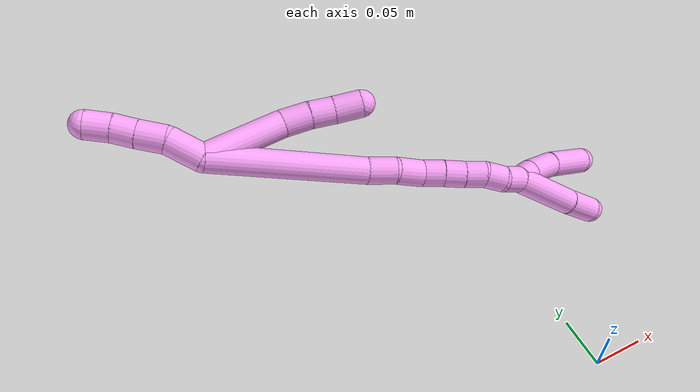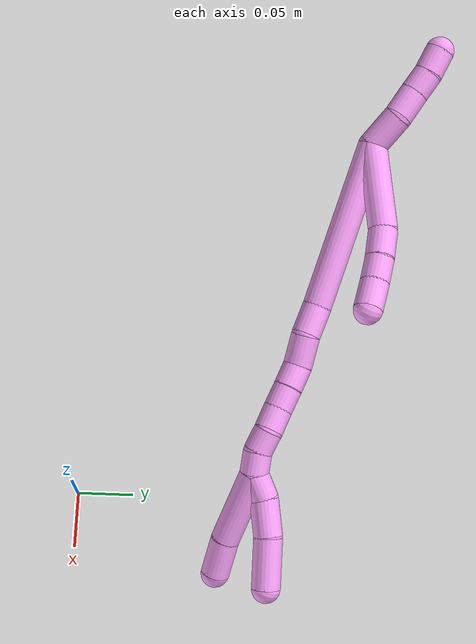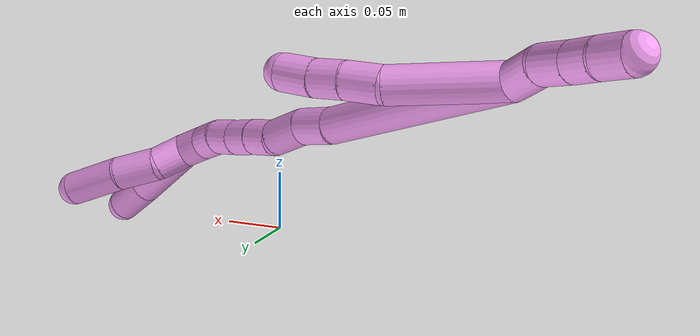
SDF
<sdf version="1.7">
 <world name="default">
  <model name="4">
   <static>0</static>
   <link name="4">
    <collision name="collision-cylinder-e_1_2_8">
     <pose>0.025717 -0.010163 -0.026497 2.77533 0.736218 2.24624</pose>
     <geometry><cylinder><radius>0.0125</radius><length>0.076596</length></cylinder></geometry>
     <surface>
      <friction><ode><mu>1.16</mu><mu2>1.16</mu2><slip1>0</slip1><slip2>0</slip2></ode></friction>
      <contact><ode><kp>1e+06</kp><kd>1</kd><max_vel>0</max_vel><min_depth>0.001</min_depth></ode></contact>
     </surface>
    </collision>
    <visual name="visual-cylinder-e_1_2_8">
     <pose>0.025717 -0.010163 -0.026497 2.77533 0.736218 2.24624</pose>
     <geometry><cylinder><radius>0.0125</radius><length>0.076596</length></cylinder></geometry>
     <material><ambient>1 0.65098 0.996078 1</ambient></material>
    </visual>
    <collision name="collision-cylinder-e_2_8_9">
     <pose>0.057999 -0.026376 -0.062378 2.56896 0.53161 1.49263</pose>
     <geometry><cylinder><radius>0.0125</radius><length>0.025905</length></cylinder></geometry>
     <surface>
      <friction><ode><mu>1.16</mu><mu2>1.16</mu2><slip1>0</slip1><slip2>0</slip2></ode></friction>
      <contact><ode><kp>1e+06</kp><kd>1</kd><max_vel>0</max_vel><min_depth>0.001</min_depth></ode></contact>
     </surface>
    </collision>
    <visual name="visual-cylinder-e_2_8_9">
     <pose>0.057999 -0.026376 -0.062378 2.56896 0.53161 1.49263</pose>
     <geometry><cylinder><radius>0.0125</radius><length>0.025905</length></cylinder></geometry>
     <material><ambient>1 0.65098 0.996078 1</ambient></material>
    </visual>
    <collision name="collision-cylinder-e_3_9_10">
     <pose>0.069309 -0.037319 -0.080402 2.62631 0.445698 1.42056</pose>
     <geometry><cylinder><radius>0.0125</radius><length>0.022009</length></cylinder></geometry>
     <surface>
      <friction><ode><mu>1.16</mu><mu2>1.16</mu2><slip1>0</slip1><slip2>0</slip2></ode></friction>
      <contact><ode><kp>1e+06</kp><kd>1</kd><max_vel>0</max_vel><min_depth>0.001</min_depth></ode></contact>
     </surface>
    </collision>
    <visual name="visual-cylinder-e_3_9_10">
     <pose>0.069309 -0.037319 -0.080402 2.62631 0.445698 1.42056</pose>
     <geometry><cylinder><radius>0.0125</radius><length>0.022009</length></cylinder></geometry>
     <material><ambient>1 0.65098 0.996078 1</ambient></material>
    </visual>
    <collision name="collision-cylinder-e_4_10_6">
     <pose>0.079375 -0.048905 -0.098493 2.52535 0.430748 1.20443</pose>
     <geometry><cylinder><radius>0.0125</radius><length>0.02549</length></cylinder></geometry>
     <surface>
      <friction><ode><mu>1.16</mu><mu2>1.16</mu2><slip1>0</slip1><slip2>0</slip2></ode></friction>
      <contact><ode><kp>1e+06</kp><kd>1</kd><max_vel>0</max_vel><min_depth>0.001</min_depth></ode></contact>
     </surface>
    </collision>
    <visual name="visual-cylinder-e_4_10_6">
     <pose>0.079375 -0.048905 -0.098493 2.52535 0.430748 1.20443</pose>
     <geometry><cylinder><radius>0.0125</radius><length>0.02549</length></cylinder></geometry>
     <material><ambient>1 0.65098 0.996078 1</ambient></material>
    </visual>
    <collision name="collision-cylinder-e_1_2_11">
     <pose>0.003105 0.003526 0.015603 -0.222264 0.19174 -0.021462</pose>
     <geometry><cylinder><radius>0.0125</radius><length>0.03259</length></cylinder></geometry>
     <surface>
      <friction><ode><mu>1.16</mu><mu2>1.16</mu2><slip1>0</slip1><slip2>0</slip2></ode></friction>
      <contact><ode><kp>1e+06</kp><kd>1</kd><max_vel>0</max_vel><min_depth>0.001</min_depth></ode></contact>
     </surface>
    </collision>
    <visual name="visual-cylinder-e_1_2_11">
     <pose>0.003105 0.003526 0.015603 -0.222264 0.19174 -0.021462</pose>
     <geometry><cylinder><radius>0.0125</radius><length>0.03259</length></cylinder></geometry>
     <material><ambient>1 0.65098 0.996078 1</ambient></material>
    </visual>
    <collision name="collision-cylinder-e_2_11_12">
     <pose>0.00588 0.012361 0.042418 -0.442212 -0.026687 0.005999</pose>
     <geometry><cylinder><radius>0.0125</radius><length>0.024819</length></cylinder></geometry>
     <surface>
      <friction><ode><mu>1.16</mu><mu2>1.16</mu2><slip1>0</slip1><slip2>0</slip2></ode></friction>
      <contact><ode><kp>1e+06</kp><kd>1</kd><max_vel>0</max_vel><min_depth>0.001</min_depth></ode></contact>
     </surface>
    </collision>
    <visual name="visual-cylinder-e_2_11_12">
     <pose>0.00588 0.012361 0.042418 -0.442212 -0.026687 0.005999</pose>
     <geometry><cylinder><radius>0.0125</radius><length>0.024819</length></cylinder></geometry>
     <material><ambient>1 0.65098 0.996078 1</ambient></material>
    </visual>
    <collision name="collision-cylinder-e_3_12_13">
     <pose>0.005657 0.021703 0.06299 -0.406821 0.010699 -0.002207</pose>
     <geometry><cylinder><radius>0.0125</radius><length>0.020385</length></cylinder></geometry>
     <surface>
      <friction><ode><mu>1.16</mu><mu2>1.16</mu2><slip1>0</slip1><slip2>0</slip2></ode></friction>
      <contact><ode><kp>1e+06</kp><kd>1</kd><max_vel>0</max_vel><min_depth>0.001</min_depth></ode></contact>
     </surface>
    </collision>
    <visual name="visual-cylinder-e_3_12_13">
     <pose>0.005657 0.021703 0.06299 -0.406821 0.010699 -0.002207</pose>
     <geometry><cylinder><radius>0.0125</radius><length>0.020385</length></cylinder></geometry>
     <material><ambient>1 0.65098 0.996078 1</ambient></material>
    </visual>
    <collision name="collision-cylinder-e_4_13_5">
     <pose>0.004258 0.029967 0.082503 -0.39491 -0.136289 0.027307</pose>
     <geometry><cylinder><radius>0.0125</radius><length>0.022206</length></cylinder></geometry>
     <surface>
      <friction><ode><mu>1.16</mu><mu2>1.16</mu2><slip1>0</slip1><slip2>0</slip2></ode></friction>
      <contact><ode><kp>1e+06</kp><kd>1</kd><max_vel>0</max_vel><min_depth>0.001</min_depth></ode></contact>
     </surface>
    </collision>
    <visual name="visual-cylinder-e_4_13_5">
     <pose>0.004258 0.029967 0.082503 -0.39491 -0.136289 0.027307</pose>
     <geometry><cylinder><radius>0.0125</radius><length>0.022206</length></cylinder></geometry>
     <material><ambient>1 0.65098 0.996078 1</ambient></material>
    </visual>
    <collision name="collision-cylinder-e_1_2_14">
     <pose>0.017685 -0.018254 -0.068138 2.87983 0.245644 1.50662</pose>
     <geometry><cylinder><radius>0.0125</radius><length>0.145447</length></cylinder></geometry>
     <surface>
      <friction><ode><mu>1.16</mu><mu2>1.16</mu2><slip1>0</slip1><slip2>0</slip2></ode></friction>
      <contact><ode><kp>1e+06</kp><kd>1</kd><max_vel>0</max_vel><min_depth>0.001</min_depth></ode></contact>
     </surface>
    </collision>
    <visual name="visual-cylinder-e_1_2_14">
     <pose>0.017685 -0.018254 -0.068138 2.87983 0.245644 1.50662</pose>
     <geometry><cylinder><radius>0.0125</radius><length>0.145447</length></cylinder></geometry>
     <material><ambient>1 0.65098 0.996078 1</ambient></material>
    </visual>
    <collision name="collision-cylinder-e_2_14_15">
     <pose>0.038732 -0.04177 -0.148044 2.72121 0.255121 1.08257</pose>
     <geometry><cylinder><radius>0.0125</radius><length>0.026644</length></cylinder></geometry>
     <surface>
      <friction><ode><mu>1.16</mu><mu2>1.16</mu2><slip1>0</slip1><slip2>0</slip2></ode></friction>
      <contact><ode><kp>1e+06</kp><kd>1</kd><max_vel>0</max_vel><min_depth>0.001</min_depth></ode></contact>
     </surface>
    </collision>
    <visual name="visual-cylinder-e_2_14_15">
     <pose>0.038732 -0.04177 -0.148044 2.72121 0.255121 1.08257</pose>
     <geometry><cylinder><radius>0.0125</radius><length>0.026644</length></cylinder></geometry>
     <material><ambient>1 0.65098 0.996078 1</ambient></material>
    </visual>
    <collision name="collision-cylinder-e_3_15_16">
     <pose>0.045779 -0.048816 -0.172802 3.00504 0.274004 2.22067</pose>
     <geometry><cylinder><radius>0.0125</radius><length>0.02724</length></cylinder></geometry>
     <surface>
      <friction><ode><mu>1.16</mu><mu2>1.16</mu2><slip1>0</slip1><slip2>0</slip2></ode></friction>
      <contact><ode><kp>1e+06</kp><kd>1</kd><max_vel>0</max_vel><min_depth>0.001</min_depth></ode></contact>
     </surface>
    </collision>
    <visual name="visual-cylinder-e_3_15_16">
     <pose>0.045779 -0.048816 -0.172802 3.00504 0.274004 2.22067</pose>
     <geometry><cylinder><radius>0.0125</radius><length>0.02724</length></cylinder></geometry>
     <material><ambient>1 0.65098 0.996078 1</ambient></material>
    </visual>
    <collision name="collision-cylinder-e_4_16_17">
     <pose>0.051754 -0.05514 -0.194759 2.67299 0.223928 0.880449</pose>
     <geometry><cylinder><radius>0.0125</radius><length>0.020616</length></cylinder></geometry>
     <surface>
      <friction><ode><mu>1.16</mu><mu2>1.16</mu2><slip1>0</slip1><slip2>0</slip2></ode></friction>
      <contact><ode><kp>1e+06</kp><kd>1</kd><max_vel>0</max_vel><min_depth>0.001</min_depth></ode></contact>
     </surface>
    </collision>
    <visual name="visual-cylinder-e_4_16_17">
     <pose>0.051754 -0.05514 -0.194759 2.67299 0.223928 0.880449</pose>
     <geometry><cylinder><radius>0.0125</radius><length>0.020616</length></cylinder></geometry>
     <material><ambient>1 0.65098 0.996078 1</ambient></material>
    </visual>
    <collision name="collision-cylinder-e_5_17_18">
     <pose>0.05593 -0.06373 -0.212687 2.71702 0.189599 0.83095</pose>
     <geometry><cylinder><radius>0.0125</radius><length>0.020028</length></cylinder></geometry>
     <surface>
      <friction><ode><mu>1.16</mu><mu2>1.16</mu2><slip1>0</slip1><slip2>0</slip2></ode></friction>
      <contact><ode><kp>1e+06</kp><kd>1</kd><max_vel>0</max_vel><min_depth>0.001</min_depth></ode></contact>
     </surface>
    </collision>
    <visual name="visual-cylinder-e_5_17_18">
     <pose>0.05593 -0.06373 -0.212687 2.71702 0.189599 0.83095</pose>
     <geometry><cylinder><radius>0.0125</radius><length>0.020028</length></cylinder></geometry>
     <material><ambient>1 0.65098 0.996078 1</ambient></material>
    </visual>
    <collision name="collision-cylinder-e_6_18_19">
     <pose>0.0601 -0.072197 -0.230331 2.67114 0.230207 0.898939</pose>
     <geometry><cylinder><radius>0.0125</radius><length>0.02001</length></cylinder></geometry>
     <surface>
      <friction><ode><mu>1.16</mu><mu2>1.16</mu2><slip1>0</slip1><slip2>0</slip2></ode></friction>
      <contact><ode><kp>1e+06</kp><kd>1</kd><max_vel>0</max_vel><min_depth>0.001</min_depth></ode></contact>
     </surface>
    </collision>
    <visual name="visual-cylinder-e_6_18_19">
     <pose>0.0601 -0.072197 -0.230331 2.67114 0.230207 0.898939</pose>
     <geometry><cylinder><radius>0.0125</radius><length>0.02001</length></cylinder></geometry>
     <material><ambient>1 0.65098 0.996078 1</ambient></material>
    </visual>
    <collision name="collision-cylinder-e_7_19_20">
     <pose>0.063223 -0.078992 -0.248693 2.90056 0.084093 0.668718</pose>
     <geometry><cylinder><radius>0.0125</radius><length>0.020004</length></cylinder></geometry>
     <surface>
      <friction><ode><mu>1.16</mu><mu2>1.16</mu2><slip1>0</slip1><slip2>0</slip2></ode></friction>
      <contact><ode><kp>1e+06</kp><kd>1</kd><max_vel>0</max_vel><min_depth>0.001</min_depth></ode></contact>
     </surface>
    </collision>
    <visual name="visual-cylinder-e_7_19_20">
     <pose>0.063223 -0.078992 -0.248693 2.90056 0.084093 0.668718</pose>
     <geometry><cylinder><radius>0.0125</radius><length>0.020004</length></cylinder></geometry>
     <material><ambient>1 0.65098 0.996078 1</ambient></material>
    </visual>
    <collision name="collision-cylinder-e_8_20_1">
     <pose>0.067635 -0.08228 -0.267673 3.04413 0.36502 2.6249</pose>
     <geometry><cylinder><radius>0.0125</radius><length>0.020011</length></cylinder></geometry>
     <surface>
      <friction><ode><mu>1.16</mu><mu2>1.16</mu2><slip1>0</slip1><slip2>0</slip2></ode></friction>
      <contact><ode><kp>1e+06</kp><kd>1</kd><max_vel>0</max_vel><min_depth>0.001</min_depth></ode></contact>
     </surface>
    </collision>
    <visual name="visual-cylinder-e_8_20_1">
     <pose>0.067635 -0.08228 -0.267673 3.04413 0.36502 2.6249</pose>
     <geometry><cylinder><radius>0.0125</radius><length>0.020011</length></cylinder></geometry>
     <material><ambient>1 0.65098 0.996078 1</ambient></material>
    </visual>
    <collision name="collision-cylinder-e_1_1_21">
     <pose>0.079351 -0.080773 -0.284723 -2.83925 0.787153 -2.43836</pose>
     <geometry><cylinder><radius>0.0125</radius><length>0.022994</length></cylinder></geometry>
     <surface>
      <friction><ode><mu>1.16</mu><mu2>1.16</mu2><slip1>0</slip1><slip2>0</slip2></ode></friction>
      <contact><ode><kp>1e+06</kp><kd>1</kd><max_vel>0</max_vel><min_depth>0.001</min_depth></ode></contact>
     </surface>
    </collision>
    <visual name="visual-cylinder-e_1_1_21">
     <pose>0.079351 -0.080773 -0.284723 -2.83925 0.787153 -2.43836</pose>
     <geometry><cylinder><radius>0.0125</radius><length>0.022994</length></cylinder></geometry>
     <material><ambient>1 0.65098 0.996078 1</ambient></material>
    </visual>
    <collision name="collision-cylinder-e_2_21_22">
     <pose>0.097505 -0.079582 -0.305217 3.04574 0.663489 2.86491</pose>
     <geometry><cylinder><radius>0.0125</radius><length>0.032509</length></cylinder></geometry>
     <surface>
      <friction><ode><mu>1.16</mu><mu2>1.16</mu2><slip1>0</slip1><slip2>0</slip2></ode></friction>
      <contact><ode><kp>1e+06</kp><kd>1</kd><max_vel>0</max_vel><min_depth>0.001</min_depth></ode></contact>
     </surface>
    </collision>
    <visual name="visual-cylinder-e_2_21_22">
     <pose>0.097505 -0.079582 -0.305217 3.04574 0.663489 2.86491</pose>
     <geometry><cylinder><radius>0.0125</radius><length>0.032509</length></cylinder></geometry>
     <material><ambient>1 0.65098 0.996078 1</ambient></material>
    </visual>
    <collision name="collision-cylinder-e_3_22_4">
     <pose>0.118019 -0.082729 -0.337484 3.04351 0.491641 2.75521</pose>
     <geometry><cylinder><radius>0.0125</radius><length>0.044497</length></cylinder></geometry>
     <surface>
      <friction><ode><mu>1.16</mu><mu2>1.16</mu2><slip1>0</slip1><slip2>0</slip2></ode></friction>
      <contact><ode><kp>1e+06</kp><kd>1</kd><max_vel>0</max_vel><min_depth>0.001</min_depth></ode></contact>
     </surface>
    </collision>
    <visual name="visual-cylinder-e_3_22_4">
     <pose>0.118019 -0.082729 -0.337484 3.04351 0.491641 2.75521</pose>
     <geometry><cylinder><radius>0.0125</radius><length>0.044497</length></cylinder></geometry>
     <material><ambient>1 0.65098 0.996078 1</ambient></material>
    </visual>
    <collision name="collision-cylinder-e_1_1_23">
     <pose>0.072951 -0.083413 -0.310058 3.13484 0.052673 2.88653</pose>
     <geometry><cylinder><radius>0.0125</radius><length>0.066259</length></cylinder></geometry>
     <surface>
      <friction><ode><mu>1.16</mu><mu2>1.16</mu2><slip1>0</slip1><slip2>0</slip2></ode></friction>
      <contact><ode><kp>1e+06</kp><kd>1</kd><max_vel>0</max_vel><min_depth>0.001</min_depth></ode></contact>
     </surface>
    </collision>
    <visual name="visual-cylinder-e_1_1_23">
     <pose>0.072951 -0.083413 -0.310058 3.13484 0.052673 2.88653</pose>
     <geometry><cylinder><radius>0.0125</radius><length>0.066259</length></cylinder></geometry>
     <material><ambient>1 0.65098 0.996078 1</ambient></material>
    </visual>
    <collision name="collision-cylinder-e_2_23_3">
     <pose>0.077352 -0.082857 -0.359783 -3.09475 0.158165 -2.56677</pose>
     <geometry><cylinder><radius>0.0125</radius><length>0.033741</length></cylinder></geometry>
     <surface>
      <friction><ode><mu>1.16</mu><mu2>1.16</mu2><slip1>0</slip1><slip2>0</slip2></ode></friction>
      <contact><ode><kp>1e+06</kp><kd>1</kd><max_vel>0</max_vel><min_depth>0.001</min_depth></ode></contact>
     </surface>
    </collision>
    <visual name="visual-cylinder-e_2_23_3">
     <pose>0.077352 -0.082857 -0.359783 -3.09475 0.158165 -2.56677</pose>
     <geometry><cylinder><radius>0.0125</radius><length>0.033741</length></cylinder></geometry>
     <material><ambient>1 0.65098 0.996078 1</ambient></material>
    </visual>
    <collision name="collision-sphere-3">
     <pose>0.08001 -0.082076 -0.376424 0 -0 0</pose>
     <geometry><sphere><radius>0.0125</radius></sphere></geometry>
     <surface>
      <friction><ode><mu>1.16</mu><mu2>1.16</mu2><slip1>0</slip1><slip2>0</slip2></ode></friction>
      <contact><ode><kp>1e+06</kp><kd>1</kd><max_vel>0</max_vel><min_depth>0.001</min_depth></ode></contact>
     </surface>
    </collision>
    <visual name="visual-sphere-3">
     <pose>0.08001 -0.082076 -0.376424 0 -0 0</pose>
     <geometry><sphere><radius>0.0125</radius></sphere></geometry>
     <material><ambient>1 0.65098 0.996078 1</ambient></material>
    </visual>
    <collision name="collision-sphere-23">
     <pose>0.074695 -0.083637 -0.343141 0 -0 0</pose>
     <geometry><sphere><radius>0.0125</radius></sphere></geometry>
     <surface>
      <friction><ode><mu>1.16</mu><mu2>1.16</mu2><slip1>0</slip1><slip2>0</slip2></ode></friction>
      <contact><ode><kp>1e+06</kp><kd>1</kd><max_vel>0</max_vel><min_depth>0.001</min_depth></ode></contact>
     </surface>
    </collision>
    <visual name="visual-sphere-23">
     <pose>0.074695 -0.083637 -0.343141 0 -0 0</pose>
     <geometry><sphere><radius>0.0125</radius></sphere></geometry>
     <material><ambient>1 0.65098 0.996078 1</ambient></material>
    </visual>
    <collision name="collision-sphere-4">
     <pose>0.128522 -0.084649 -0.357003 0 -0 0</pose>
     <geometry><sphere><radius>0.0125</radius></sphere></geometry>
     <surface>
      <friction><ode><mu>1.16</mu><mu2>1.16</mu2><slip1>0</slip1><slip2>0</slip2></ode></friction>
      <contact><ode><kp>1e+06</kp><kd>1</kd><max_vel>0</max_vel><min_depth>0.001</min_depth></ode></contact>
     </surface>
    </collision>
    <visual name="visual-sphere-4">
     <pose>0.128522 -0.084649 -0.357003 0 -0 0</pose>
     <geometry><sphere><radius>0.0125</radius></sphere></geometry>
     <material><ambient>1 0.65098 0.996078 1</ambient></material>
    </visual>
    <collision name="collision-sphere-22">
     <pose>0.107516 -0.080808 -0.317965 0 -0 0</pose>
     <geometry><sphere><radius>0.0125</radius></sphere></geometry>
     <surface>
      <friction><ode><mu>1.16</mu><mu2>1.16</mu2><slip1>0</slip1><slip2>0</slip2></ode></friction>
      <contact><ode><kp>1e+06</kp><kd>1</kd><max_vel>0</max_vel><min_depth>0.001</min_depth></ode></contact>
     </surface>
    </collision>
    <visual name="visual-sphere-22">
     <pose>0.107516 -0.080808 -0.317965 0 -0 0</pose>
     <geometry><sphere><radius>0.0125</radius></sphere></geometry>
     <material><ambient>1 0.65098 0.996078 1</ambient></material>
    </visual>
    <collision name="collision-sphere-21">
     <pose>0.087495 -0.078357 -0.29247 0 -0 0</pose>
     <geometry><sphere><radius>0.0125</radius></sphere></geometry>
     <surface>
      <friction><ode><mu>1.16</mu><mu2>1.16</mu2><slip1>0</slip1><slip2>0</slip2></ode></friction>
      <contact><ode><kp>1e+06</kp><kd>1</kd><max_vel>0</max_vel><min_depth>0.001</min_depth></ode></contact>
     </surface>
    </collision>
    <visual name="visual-sphere-21">
     <pose>0.087495 -0.078357 -0.29247 0 -0 0</pose>
     <geometry><sphere><radius>0.0125</radius></sphere></geometry>
     <material><ambient>1 0.65098 0.996078 1</ambient></material>
    </visual>
    <collision name="collision-sphere-1">
     <pose>0.071207 -0.08319 -0.276975 0 -0 0</pose>
     <geometry><sphere><radius>0.0125</radius></sphere></geometry>
     <surface>
      <friction><ode><mu>1.16</mu><mu2>1.16</mu2><slip1>0</slip1><slip2>0</slip2></ode></friction>
      <contact><ode><kp>1e+06</kp><kd>1</kd><max_vel>0</max_vel><min_depth>0.001</min_depth></ode></contact>
     </surface>
    </collision>
    <visual name="visual-sphere-1">
     <pose>0.071207 -0.08319 -0.276975 0 -0 0</pose>
     <geometry><sphere><radius>0.0125</radius></sphere></geometry>
     <material><ambient>1 0.65098 0.996078 1</ambient></material>
    </visual>
    <collision name="collision-sphere-11">
     <pose>0.006211 0.007052 0.031206 0 -0 0</pose>
     <geometry><sphere><radius>0.0125</radius></sphere></geometry>
     <surface>
      <friction><ode><mu>1.16</mu><mu2>1.16</mu2><slip1>0</slip1><slip2>0</slip2></ode></friction>
      <contact><ode><kp>1e+06</kp><kd>1</kd><max_vel>0</max_vel><min_depth>0.001</min_depth></ode></contact>
     </surface>
    </collision>
    <visual name="visual-sphere-11">
     <pose>0.006211 0.007052 0.031206 0 -0 0</pose>
     <geometry><sphere><radius>0.0125</radius></sphere></geometry>
     <material><ambient>1 0.65098 0.996078 1</ambient></material>
    </visual>
    <collision name="collision-sphere-6">
     <pose>0.084696 -0.055599 -0.107943 0 -0 0</pose>
     <geometry><sphere><radius>0.0125</radius></sphere></geometry>
     <surface>
      <friction><ode><mu>1.16</mu><mu2>1.16</mu2><slip1>0</slip1><slip2>0</slip2></ode></friction>
      <contact><ode><kp>1e+06</kp><kd>1</kd><max_vel>0</max_vel><min_depth>0.001</min_depth></ode></contact>
     </surface>
    </collision>
    <visual name="visual-sphere-6">
     <pose>0.084696 -0.055599 -0.107943 0 -0 0</pose>
     <geometry><sphere><radius>0.0125</radius></sphere></geometry>
     <material><ambient>1 0.65098 0.996078 1</ambient></material>
    </visual>
    <collision name="collision-sphere-10">
     <pose>0.074053 -0.042212 -0.089042 0 -0 0</pose>
     <geometry><sphere><radius>0.0125</radius></sphere></geometry>
     <surface>
      <friction><ode><mu>1.16</mu><mu2>1.16</mu2><slip1>0</slip1><slip2>0</slip2></ode></friction>
      <contact><ode><kp>1e+06</kp><kd>1</kd><max_vel>0</max_vel><min_depth>0.001</min_depth></ode></contact>
     </surface>
    </collision>
    <visual name="visual-sphere-10">
     <pose>0.074053 -0.042212 -0.089042 0 -0 0</pose>
     <geometry><sphere><radius>0.0125</radius></sphere></geometry>
     <material><ambient>1 0.65098 0.996078 1</ambient></material>
    </visual>
    <collision name="collision-sphere-9">
     <pose>0.064565 -0.032426 -0.071762 0 -0 0</pose>
     <geometry><sphere><radius>0.0125</radius></sphere></geometry>
     <surface>
      <friction><ode><mu>1.16</mu><mu2>1.16</mu2><slip1>0</slip1><slip2>0</slip2></ode></friction>
      <contact><ode><kp>1e+06</kp><kd>1</kd><max_vel>0</max_vel><min_depth>0.001</min_depth></ode></contact>
     </surface>
    </collision>
    <visual name="visual-sphere-9">
     <pose>0.064565 -0.032426 -0.071762 0 -0 0</pose>
     <geometry><sphere><radius>0.0125</radius></sphere></geometry>
     <material><ambient>1 0.65098 0.996078 1</ambient></material>
    </visual>
    <collision name="collision-sphere-2">
     <geometry><sphere><radius>0.0125</radius></sphere></geometry>
     <surface>
      <friction><ode><mu>1.16</mu><mu2>1.16</mu2><slip1>0</slip1><slip2>0</slip2></ode></friction>
      <contact><ode><kp>1e+06</kp><kd>1</kd><max_vel>0</max_vel><min_depth>0.001</min_depth></ode></contact>
     </surface>
    </collision>
    <visual name="visual-sphere-2">
     <geometry><sphere><radius>0.0125</radius></sphere></geometry>
     <material><ambient>1 0.65098 0.996078 1</ambient></material>
    </visual>
    <collision name="collision-sphere-19">
     <pose>0.062383 -0.076612 -0.239014 0 -0 0</pose>
     <geometry><sphere><radius>0.0125</radius></sphere></geometry>
     <surface>
      <friction><ode><mu>1.16</mu><mu2>1.16</mu2><slip1>0</slip1><slip2>0</slip2></ode></friction>
      <contact><ode><kp>1e+06</kp><kd>1</kd><max_vel>0</max_vel><min_depth>0.001</min_depth></ode></contact>
     </surface>
    </collision>
    <visual name="visual-sphere-19">
     <pose>0.062383 -0.076612 -0.239014 0 -0 0</pose>
     <geometry><sphere><radius>0.0125</radius></sphere></geometry>
     <material><ambient>1 0.65098 0.996078 1</ambient></material>
    </visual>
    <collision name="collision-sphere-8">
     <pose>0.051434 -0.020327 -0.052994 0 -0 0</pose>
     <geometry><sphere><radius>0.0125</radius></sphere></geometry>
     <surface>
      <friction><ode><mu>1.16</mu><mu2>1.16</mu2><slip1>0</slip1><slip2>0</slip2></ode></friction>
      <contact><ode><kp>1e+06</kp><kd>1</kd><max_vel>0</max_vel><min_depth>0.001</min_depth></ode></contact>
     </surface>
    </collision>
    <visual name="visual-sphere-8">
     <pose>0.051434 -0.020327 -0.052994 0 -0 0</pose>
     <geometry><sphere><radius>0.0125</radius></sphere></geometry>
     <material><ambient>1 0.65098 0.996078 1</ambient></material>
    </visual>
    <collision name="collision-sphere-12">
     <pose>0.005548 0.01767 0.05363 0 -0 0</pose>
     <geometry><sphere><radius>0.0125</radius></sphere></geometry>
     <surface>
      <friction><ode><mu>1.16</mu><mu2>1.16</mu2><slip1>0</slip1><slip2>0</slip2></ode></friction>
      <contact><ode><kp>1e+06</kp><kd>1</kd><max_vel>0</max_vel><min_depth>0.001</min_depth></ode></contact>
     </surface>
    </collision>
    <visual name="visual-sphere-12">
     <pose>0.005548 0.01767 0.05363 0 -0 0</pose>
     <geometry><sphere><radius>0.0125</radius></sphere></geometry>
     <material><ambient>1 0.65098 0.996078 1</ambient></material>
    </visual>
    <collision name="collision-sphere-13">
     <pose>0.005766 0.025735 0.07235 0 -0 0</pose>
     <geometry><sphere><radius>0.0125</radius></sphere></geometry>
     <surface>
      <friction><ode><mu>1.16</mu><mu2>1.16</mu2><slip1>0</slip1><slip2>0</slip2></ode></friction>
      <contact><ode><kp>1e+06</kp><kd>1</kd><max_vel>0</max_vel><min_depth>0.001</min_depth></ode></contact>
     </surface>
    </collision>
    <visual name="visual-sphere-13">
     <pose>0.005766 0.025735 0.07235 0 -0 0</pose>
     <geometry><sphere><radius>0.0125</radius></sphere></geometry>
     <material><ambient>1 0.65098 0.996078 1</ambient></material>
    </visual>
    <collision name="collision-sphere-5">
     <pose>0.002749 0.034199 0.092656 0 -0 0</pose>
     <geometry><sphere><radius>0.0125</radius></sphere></geometry>
     <surface>
      <friction><ode><mu>1.16</mu><mu2>1.16</mu2><slip1>0</slip1><slip2>0</slip2></ode></friction>
      <contact><ode><kp>1e+06</kp><kd>1</kd><max_vel>0</max_vel><min_depth>0.001</min_depth></ode></contact>
     </surface>
    </collision>
    <visual name="visual-sphere-5">
     <pose>0.002749 0.034199 0.092656 0 -0 0</pose>
     <geometry><sphere><radius>0.0125</radius></sphere></geometry>
     <material><ambient>1 0.65098 0.996078 1</ambient></material>
    </visual>
    <collision name="collision-sphere-14">
     <pose>0.03537 -0.036509 -0.136275 0 -0 0</pose>
     <geometry><sphere><radius>0.0125</radius></sphere></geometry>
     <surface>
      <friction><ode><mu>1.16</mu><mu2>1.16</mu2><slip1>0</slip1><slip2>0</slip2></ode></friction>
      <contact><ode><kp>1e+06</kp><kd>1</kd><max_vel>0</max_vel><min_depth>0.001</min_depth></ode></contact>
     </surface>
    </collision>
    <visual name="visual-sphere-14">
     <pose>0.03537 -0.036509 -0.136275 0 -0 0</pose>
     <geometry><sphere><radius>0.0125</radius></sphere></geometry>
     <material><ambient>1 0.65098 0.996078 1</ambient></material>
    </visual>
    <collision name="collision-sphere-15">
     <pose>0.042094 -0.047031 -0.159812 0 -0 0</pose>
     <geometry><sphere><radius>0.0125</radius></sphere></geometry>
     <surface>
      <friction><ode><mu>1.16</mu><mu2>1.16</mu2><slip1>0</slip1><slip2>0</slip2></ode></friction>
      <contact><ode><kp>1e+06</kp><kd>1</kd><max_vel>0</max_vel><min_depth>0.001</min_depth></ode></contact>
     </surface>
    </collision>
    <visual name="visual-sphere-15">
     <pose>0.042094 -0.047031 -0.159812 0 -0 0</pose>
     <geometry><sphere><radius>0.0125</radius></sphere></geometry>
     <material><ambient>1 0.65098 0.996078 1</ambient></material>
    </visual>
    <collision name="collision-sphere-16">
     <pose>0.049465 -0.050601 -0.185792 0 -0 0</pose>
     <geometry><sphere><radius>0.0125</radius></sphere></geometry>
     <surface>
      <friction><ode><mu>1.16</mu><mu2>1.16</mu2><slip1>0</slip1><slip2>0</slip2></ode></friction>
      <contact><ode><kp>1e+06</kp><kd>1</kd><max_vel>0</max_vel><min_depth>0.001</min_depth></ode></contact>
     </surface>
    </collision>
    <visual name="visual-sphere-16">
     <pose>0.049465 -0.050601 -0.185792 0 -0 0</pose>
     <geometry><sphere><radius>0.0125</radius></sphere></geometry>
     <material><ambient>1 0.65098 0.996078 1</ambient></material>
    </visual>
    <collision name="collision-sphere-17">
     <pose>0.054043 -0.059679 -0.203726 0 -0 0</pose>
     <geometry><sphere><radius>0.0125</radius></sphere></geometry>
     <surface>
      <friction><ode><mu>1.16</mu><mu2>1.16</mu2><slip1>0</slip1><slip2>0</slip2></ode></friction>
      <contact><ode><kp>1e+06</kp><kd>1</kd><max_vel>0</max_vel><min_depth>0.001</min_depth></ode></contact>
     </surface>
    </collision>
    <visual name="visual-sphere-17">
     <pose>0.054043 -0.059679 -0.203726 0 -0 0</pose>
     <geometry><sphere><radius>0.0125</radius></sphere></geometry>
     <material><ambient>1 0.65098 0.996078 1</ambient></material>
    </visual>
    <collision name="collision-sphere-18">
     <pose>0.057817 -0.067781 -0.221648 0 -0 0</pose>
     <geometry><sphere><radius>0.0125</radius></sphere></geometry>
     <surface>
      <friction><ode><mu>1.16</mu><mu2>1.16</mu2><slip1>0</slip1><slip2>0</slip2></ode></friction>
      <contact><ode><kp>1e+06</kp><kd>1</kd><max_vel>0</max_vel><min_depth>0.001</min_depth></ode></contact>
     </surface>
    </collision>
    <visual name="visual-sphere-18">
     <pose>0.057817 -0.067781 -0.221648 0 -0 0</pose>
     <geometry><sphere><radius>0.0125</radius></sphere></geometry>
     <material><ambient>1 0.65098 0.996078 1</ambient></material>
    </visual>
    <collision name="collision-sphere-20">
     <pose>0.064063 -0.081371 -0.258371 0 -0 0</pose>
     <geometry><sphere><radius>0.0125</radius></sphere></geometry>
     <surface>
      <friction><ode><mu>1.16</mu><mu2>1.16</mu2><slip1>0</slip1><slip2>0</slip2></ode></friction>
      <contact><ode><kp>1e+06</kp><kd>1</kd><max_vel>0</max_vel><min_depth>0.001</min_depth></ode></contact>
     </surface>
    </collision>
    <visual name="visual-sphere-20">
     <pose>0.064063 -0.081371 -0.258371 0 -0 0</pose>
     <geometry><sphere><radius>0.0125</radius></sphere></geometry>
     <material><ambient>1 0.65098 0.996078 1</ambient></material>
    </visual>
    <inertial>
     <pose>0.048035 -0.040841 -0.145593 0 -0 0</pose>
     <mass>0.75</mass>
     <inertia>
      <ixx>0.000286</ixx>
      <ixy>0</ixy>
      <ixz>0</ixz>
      <iyy>0.000375</iyy>
      <iyz>0</iyz>
      <izz>-6.4e-05</izz>
     </inertia>
    </inertial>
   </link>
   <pose>-0.26864 0.252774 0.189059 -0.925292 -0.182553 0.930469</pose>
  </model>
 </world>
</sdf>
